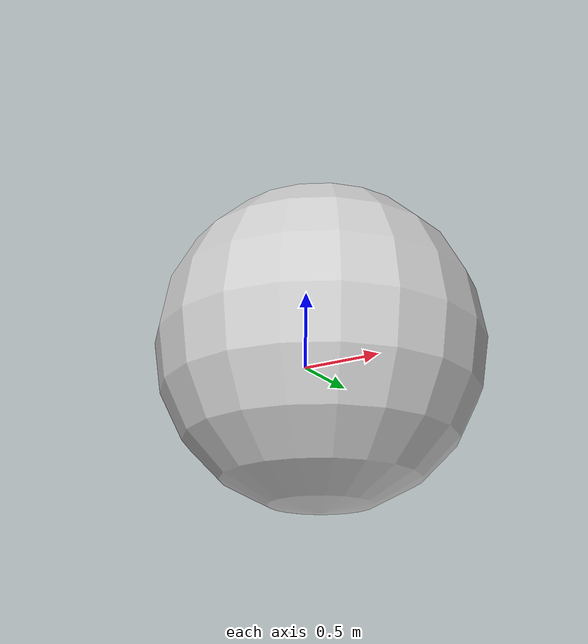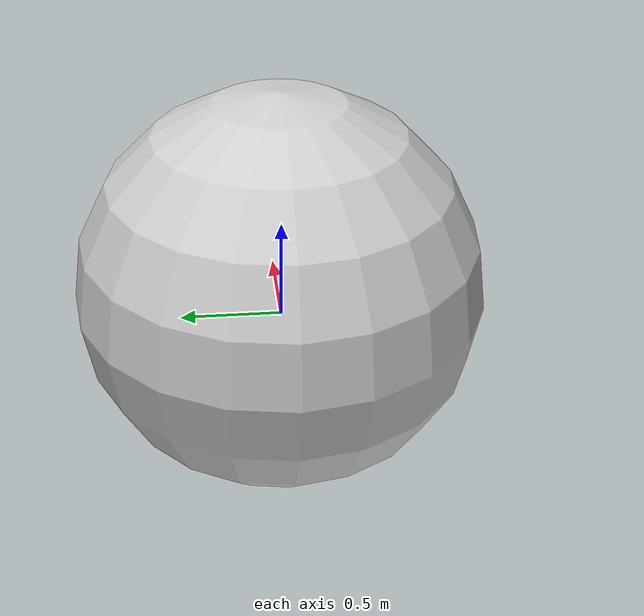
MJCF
<mujoco model="model">
  <worldbody>
    <body name="scissor" pos="0.11 0.0 0.1" quat="1 0 0 0">
        <!-- Fixed body for reference -->
        <geom type="sphere" size="1.01" rgba="0.8 0.8 0.8 1"/>

        <!-- Blade A -->
        <body name="blade_a" pos="0 0 0">
        <joint name="scissor_hinge_a" type="hinge" axis="0 0 1" pos="0 0 0" range="0 1.57" damping="0.01"/>
        <geom type="capsule" fromto="0 0 0 0.15 0.05 0" size="0.01" rgba="0.2 0.2 0.8 1"/>
        <geom type="capsule" fromto="0 0 0 -0.15 -0.05 0" size="0.01" rgba="0.2 0.2 0.8 1"/>
        <site name="tip_a" pos="0.15 0.05 0" size="0.01" rgba="1 0 0 1"/>
        </body>

        <!-- Blade B -->
        <body name="blade_b" pos="0 0 0">
        <joint name="scissor_hinge_b" type="hinge" axis="0 0 1" pos="0 0 0" range="0 1.57" damping="0.01"/>
        <geom type="capsule" fromto="0 0 0 0.15 -0.05 0" size="0.01" rgba="0.8 0.2 0.2 1"/>
        <geom type="capsule" fromto="0 0 0 -0.15 0.05 0" size="0.01" rgba="0.8 0.2 0.2 1"/>
        <site name="tip_b" pos="0.15 -0.05 0" size="0.01" rgba="0 1 0 1"/>
        </body>
    </body>
  </worldbody>
</mujoco>
